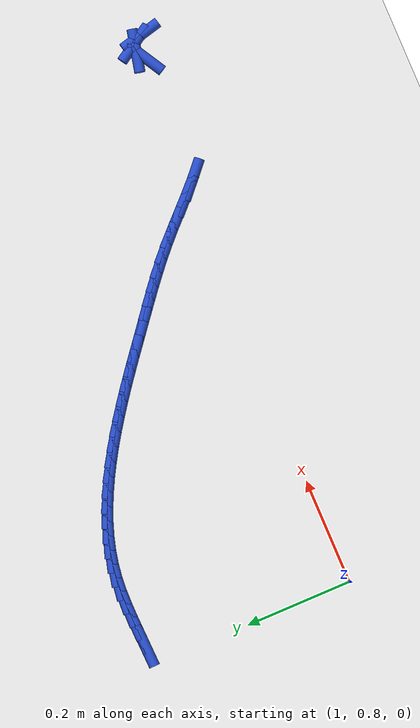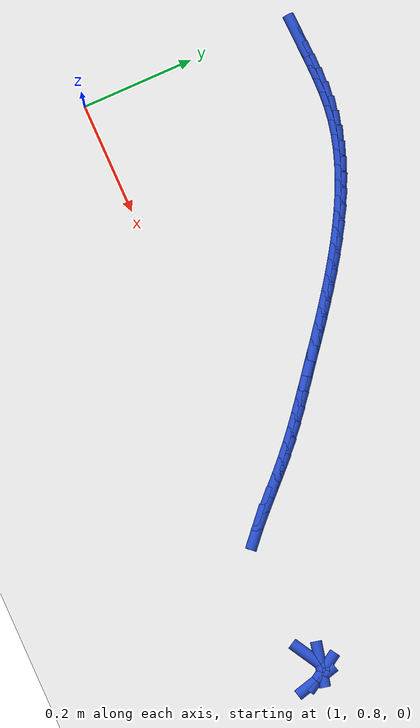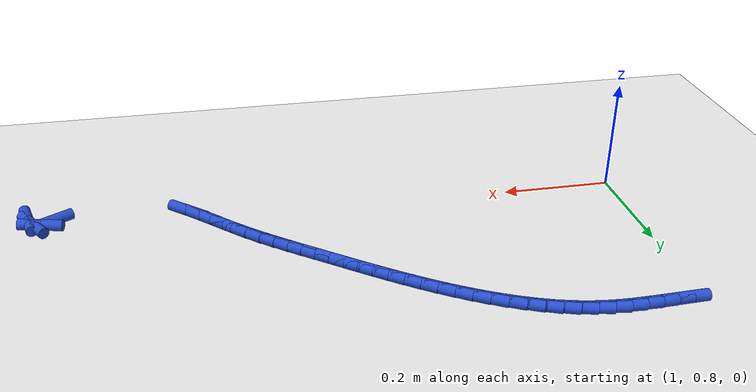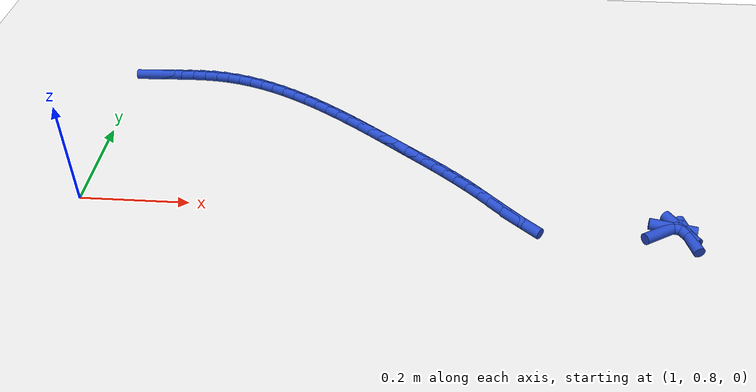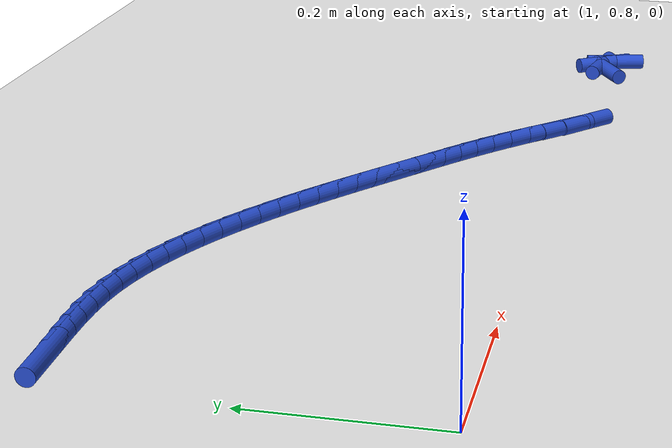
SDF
<sdf version="1.6">
 <world name="default">
  <model name="ground_plane">
   <static>1</static>
   <link name="link">
    <collision name="collision">
     <geometry><plane><normal>0 0 1</normal><size>100 100</size></plane></geometry>
     <surface><friction><ode><mu>100</mu><mu2>50</mu2></ode></friction></surface>
    </collision>
    <visual name="visual">
     <cast_shadows>0</cast_shadows>
     <geometry><plane><normal>0 0 1</normal><size>100 100</size></plane></geometry>
     <material>
      <script><uri>file://media/materials/scripts/gazebo.material</uri><name>Gazebo/WhiteGlow</name></script>
     </material>
    </visual>
   </link>
  </model>
  <model name="line">
   <link name="link_67">
    <pose>1.0381441361978527 1.1863007756691304 0.01 0 1.57 0.0333439631039731</pose>
    <collision name="collision">
     <geometry><cylinder><radius>0.01</radius><length>0.08</length></cylinder></geometry>
    </collision>
    <visual name="visual">
     <material>
      <script><name>Gazebo/Blue</name><uri>file://media/materials/scripts/gazebo.material</uri></script>
     </material>
     <geometry><cylinder><radius>0.01</radius><length>0.08</length></cylinder></geometry>
    </visual>
   </link>
   <link name="link_68">
    <pose>1.0652624599478735 1.1872053433193077 0.01 0 1.57 0.03232112575038664</pose>
    <collision name="collision">
     <geometry><cylinder><radius>0.01</radius><length>0.08</length></cylinder></geometry>
    </collision>
    <visual name="visual">
     <material>
      <script><name>Gazebo/Blue</name><uri>file://media/materials/scripts/gazebo.material</uri></script>
     </material>
     <geometry><cylinder><radius>0.01</radius><length>0.08</length></cylinder></geometry>
    </visual>
   </link>
   <link name="link_69">
    <pose>1.0919559448980485 1.188068407358801 0.01 0 1.57 0.014881690648698268</pose>
    <collision name="collision">
     <geometry><cylinder><radius>0.01</radius><length>0.08</length></cylinder></geometry>
    </collision>
    <visual name="visual">
     <material>
      <script><name>Gazebo/Blue</name><uri>file://media/materials/scripts/gazebo.material</uri></script>
     </material>
     <geometry><cylinder><radius>0.01</radius><length>0.08</length></cylinder></geometry>
    </visual>
   </link>
   <link name="link_70">
    <pose>1.1182866486339924 1.1884602816755672 0.01 0 1.57 -0.019551941805255272</pose>
    <collision name="collision">
     <geometry><cylinder><radius>0.01</radius><length>0.08</length></cylinder></geometry>
    </collision>
    <visual name="visual">
     <material>
      <script><name>Gazebo/Blue</name><uri>file://media/materials/scripts/gazebo.material</uri></script>
     </material>
     <geometry><cylinder><radius>0.01</radius><length>0.08</length></cylinder></geometry>
    </visual>
   </link>
   <link name="link_71">
    <pose>1.1443166287413213 1.1879512801575636 0.01 0 1.57 -0.07120434077144835</pose>
    <collision name="collision">
     <geometry><cylinder><radius>0.01</radius><length>0.08</length></cylinder></geometry>
    </collision>
    <visual name="visual">
     <material>
      <script><name>Gazebo/Blue</name><uri>file://media/materials/scripts/gazebo.material</uri></script>
     </material>
     <geometry><cylinder><radius>0.01</radius><length>0.08</length></cylinder></geometry>
    </visual>
   </link>
   <link name="link_72">
    <pose>1.1701079428056502 1.1861117166927473 0.01 0 1.57 -0.13897435776798897</pose>
    <collision name="collision">
     <geometry><cylinder><radius>0.01</radius><length>0.08</length></cylinder></geometry>
    </collision>
    <visual name="visual">
     <material>
      <script><name>Gazebo/Blue</name><uri>file://media/materials/scripts/gazebo.material</uri></script>
     </material>
     <geometry><cylinder><radius>0.01</radius><length>0.08</length></cylinder></geometry>
    </visual>
   </link>
   <link name="link_73">
    <pose>1.1957202697943599 1.182529165937361 0.01 0 1.57 -0.21064683466283354</pose>
    <collision name="collision">
     <geometry><cylinder><radius>0.01</radius><length>0.08</length></cylinder></geometry>
    </collision>
    <visual name="visual">
     <material>
      <script><name>Gazebo/Blue</name><uri>file://media/materials/scripts/gazebo.material</uri></script>
     </material>
     <geometry><cylinder><radius>0.01</radius><length>0.08</length></cylinder></geometry>
    </visual>
   </link>
   <link name="link_74">
    <pose>1.221172526899955 1.1770869959376105 0.01 0 1.57 -0.27639310832509073</pose>
    <collision name="collision">
     <geometry><cylinder><radius>0.01</radius><length>0.08</length></cylinder></geometry>
    </collision>
    <visual name="visual">
     <material>
      <script><name>Gazebo/Blue</name><uri>file://media/materials/scripts/gazebo.material</uri></script>
     </material>
     <geometry><cylinder><radius>0.01</radius><length>0.08</length></cylinder></geometry>
    </visual>
   </link>
   <link name="link_75">
    <pose>1.2464493784059067 1.1699171356551743 0.01 0 1.57 -0.33589795598405275</pose>
    <collision name="collision">
     <geometry><cylinder><radius>0.01</radius><length>0.08</length></cylinder></geometry>
    </collision>
    <visual name="visual">
     <material>
      <script><name>Gazebo/Blue</name><uri>file://media/materials/scripts/gazebo.material</uri></script>
     </material>
     <geometry><cylinder><radius>0.01</radius><length>0.08</length></cylinder></geometry>
    </visual>
   </link>
   <link name="link_76">
    <pose>1.2715344241142106 1.161159238607028 0.01 0 1.57 -0.38933039295243377</pose>
    <collision name="collision">
     <geometry><cylinder><radius>0.01</radius><length>0.08</length></cylinder></geometry>
    </collision>
    <visual name="visual">
     <material>
      <script><name>Gazebo/Blue</name><uri>file://media/materials/scripts/gazebo.material</uri></script>
     </material>
     <geometry><cylinder><radius>0.01</radius><length>0.08</length></cylinder></geometry>
    </visual>
   </link>
   <link name="link_77">
    <pose>1.2964112638268621 1.1509529583101479 0.01 0 1.57 -0.4369813335193183</pose>
    <collision name="collision">
     <geometry><cylinder><radius>0.01</radius><length>0.08</length></cylinder></geometry>
    </collision>
    <visual name="visual">
     <material>
      <script><name>Gazebo/Blue</name><uri>file://media/materials/scripts/gazebo.material</uri></script>
     </material>
     <geometry><cylinder><radius>0.01</radius><length>0.08</length></cylinder></geometry>
    </visual>
   </link>
   <link name="link_78">
    <pose>1.3210634973458575 1.1394379482815098 0.01 0 1.57 -0.47920478631398655</pose>
    <collision name="collision">
     <geometry><cylinder><radius>0.01</radius><length>0.08</length></cylinder></geometry>
    </collision>
    <visual name="visual">
     <material>
      <script><name>Gazebo/Blue</name><uri>file://media/materials/scripts/gazebo.material</uri></script>
     </material>
     <geometry><cylinder><radius>0.01</radius><length>0.08</length></cylinder></geometry>
    </visual>
   </link>
   <link name="link_79">
    <pose>1.3454747244731917 1.1267538620380897 0.01 0 1.57 -0.5163741952917786</pose>
    <collision name="collision">
     <geometry><cylinder><radius>0.01</radius><length>0.08</length></cylinder></geometry>
    </collision>
    <visual name="visual">
     <material>
      <script><name>Gazebo/Blue</name><uri>file://media/materials/scripts/gazebo.material</uri></script>
     </material>
     <geometry><cylinder><radius>0.01</radius><length>0.08</length></cylinder></geometry>
    </visual>
   </link>
   <link name="link_80">
    <pose>1.369628545010861 1.1130403530968644 0.01 0 1.57 -0.548852301888598</pose>
    <collision name="collision">
     <geometry><cylinder><radius>0.01</radius><length>0.08</length></cylinder></geometry>
    </collision>
    <visual name="visual">
     <material>
      <script><name>Gazebo/Blue</name><uri>file://media/materials/scripts/gazebo.material</uri></script>
     </material>
     <geometry><cylinder><radius>0.01</radius><length>0.08</length></cylinder></geometry>
    </visual>
   </link>
   <link name="link_81">
    <pose>1.39350855876086 1.0984370749748091 0.01 0 1.57 -0.576971576781629</pose>
    <collision name="collision">
     <geometry><cylinder><radius>0.01</radius><length>0.08</length></cylinder></geometry>
    </collision>
    <visual name="visual">
     <material>
      <script><name>Gazebo/Blue</name><uri>file://media/materials/scripts/gazebo.material</uri></script>
     </material>
     <geometry><cylinder><radius>0.01</radius><length>0.08</length></cylinder></geometry>
    </visual>
   </link>
   <link name="link_82">
    <pose>1.4170983655251859 1.0830836811889002 0.01 0 1.57 -0.6010221434878797</pose>
    <collision name="collision">
     <geometry><cylinder><radius>0.01</radius><length>0.08</length></cylinder></geometry>
    </collision>
    <visual name="visual">
     <material>
      <script><name>Gazebo/Blue</name><uri>file://media/materials/scripts/gazebo.material</uri></script>
     </material>
     <geometry><cylinder><radius>0.01</radius><length>0.08</length></cylinder></geometry>
    </visual>
   </link>
   <link name="link_83">
    <pose>1.440381565105833 1.0671198252561136 0.01 0 1.57 -0.6212445299086801</pose>
    <collision name="collision">
     <geometry><cylinder><radius>0.01</radius><length>0.08</length></cylinder></geometry>
    </collision>
    <visual name="visual">
     <material>
      <script><name>Gazebo/Blue</name><uri>file://media/materials/scripts/gazebo.material</uri></script>
     </material>
     <geometry><cylinder><radius>0.01</radius><length>0.08</length></cylinder></geometry>
    </visual>
   </link>
   <link name="link_84">
    <pose>1.4633417573047978 1.050685160693426 0.01 0 1.57 -0.6378251378970421</pose>
    <collision name="collision">
     <geometry><cylinder><radius>0.01</radius><length>0.08</length></cylinder></geometry>
    </collision>
    <visual name="visual">
     <material>
      <script><name>Gazebo/Blue</name><uri>file://media/materials/scripts/gazebo.material</uri></script>
     </material>
     <geometry><cylinder><radius>0.01</radius><length>0.08</length></cylinder></geometry>
    </visual>
   </link>
   <link name="link_85">
    <pose>1.485962541924075 1.0339193410178131 0.01 0 1.57 -0.6508928181626911</pose>
    <collision name="collision">
     <geometry><cylinder><radius>0.01</radius><length>0.08</length></cylinder></geometry>
    </collision>
    <visual name="visual">
     <material>
      <script><name>Gazebo/Blue</name><uri>file://media/materials/scripts/gazebo.material</uri></script>
     </material>
     <geometry><cylinder><radius>0.01</radius><length>0.08</length></cylinder></geometry>
    </visual>
   </link>
   <link name="link_86">
    <pose>1.508227518765661 1.0169620197462503 0.01 0 1.57 -0.6605153031017855</pose>
    <collision name="collision">
     <geometry><cylinder><radius>0.01</radius><length>0.08</length></cylinder></geometry>
    </collision>
    <visual name="visual">
     <material>
      <script><name>Gazebo/Blue</name><uri>file://media/materials/scripts/gazebo.material</uri></script>
     </material>
     <geometry><cylinder><radius>0.01</radius><length>0.08</length></cylinder></geometry>
    </visual>
   </link>
   <link name="link_87">
    <pose>1.530120287631552 0.9999528503957147 0.01 0 1.57 -0.6666944672492753</pose>
    <collision name="collision">
     <geometry><cylinder><radius>0.01</radius><length>0.08</length></cylinder></geometry>
    </collision>
    <visual name="visual">
     <material>
      <script><name>Gazebo/Blue</name><uri>file://media/materials/scripts/gazebo.material</uri></script>
     </material>
     <geometry><cylinder><radius>0.01</radius><length>0.08</length></cylinder></geometry>
    </visual>
   </link>
   <link name="link_88">
    <pose>1.5516244483237425 0.9830314864831817 0.01 0 1.57 -0.6693594590260595</pose>
    <collision name="collision">
     <geometry><cylinder><radius>0.01</radius><length>0.08</length></cylinder></geometry>
    </collision>
    <visual name="visual">
     <material>
      <script><name>Gazebo/Blue</name><uri>file://media/materials/scripts/gazebo.material</uri></script>
     </material>
     <geometry><cylinder><radius>0.01</radius><length>0.08</length></cylinder></geometry>
    </visual>
   </link>
   <link name="link_89">
    <pose>1.5727236006442287 0.9663375815256274 0.01 0 1.57 -0.668693983475017</pose>
    <collision name="collision">
     <geometry><cylinder><radius>0.01</radius><length>0.08</length></cylinder></geometry>
    </collision>
    <visual name="visual">
     <material>
      <script><name>Gazebo/Blue</name><uri>file://media/materials/scripts/gazebo.material</uri></script>
     </material>
     <geometry><cylinder><radius>0.01</radius><length>0.08</length></cylinder></geometry>
    </visual>
   </link>
   <link name="link_90">
    <pose>1.5934078343590572 0.9499943352985748 0.01 0 1.57 -0.6700878174838375</pose>
    <collision name="collision">
     <geometry><cylinder><radius>0.01</radius><length>0.08</length></cylinder></geometry>
    </collision>
    <visual name="visual">
     <material>
      <script><name>Gazebo/Blue</name><uri>file://media/materials/scripts/gazebo.material</uri></script>
     </material>
     <geometry><cylinder><radius>0.01</radius><length>0.08</length></cylinder></geometry>
    </visual>
   </link>
   <link name="link_91">
    <pose>1.6137728737517774 0.9338571366889464 0.01 0 1.57 -0.6780956194503492</pose>
    <collision name="collision">
     <geometry><cylinder><radius>0.01</radius><length>0.08</length></cylinder></geometry>
    </collision>
    <visual name="visual">
     <material>
      <script><name>Gazebo/Blue</name><uri>file://media/materials/scripts/gazebo.material</uri></script>
     </material>
     <geometry><cylinder><radius>0.01</radius><length>0.08</length></cylinder></geometry>
    </visual>
   </link>
   <link name="link_92">
    <pose>1.6340003543014987 0.9175635674296369 0.01 0 1.57 -0.6925112424646565</pose>
    <collision name="collision">
     <geometry><cylinder><radius>0.01</radius><length>0.08</length></cylinder></geometry>
    </collision>
    <visual name="visual">
     <material>
      <script><name>Gazebo/Blue</name><uri>file://media/materials/scripts/gazebo.material</uri></script>
     </material>
     <geometry><cylinder><radius>0.01</radius><length>0.08</length></cylinder></geometry>
    </visual>
   </link>
   <link name="link_93">
    <pose>1.6542744038946011 0.9007448903549394 0.01 0 1.57 -0.712465897620827</pose>
    <collision name="collision">
     <geometry><cylinder><radius>0.01</radius><length>0.08</length></cylinder></geometry>
    </collision>
    <visual name="visual">
     <material>
      <script><name>Gazebo/Blue</name><uri>file://media/materials/scripts/gazebo.material</uri></script>
     </material>
     <geometry><cylinder><radius>0.01</radius><length>0.08</length></cylinder></geometry>
    </visual>
   </link>
   <link name="link_94">
    <pose>1.6747791504174612 0.8830323682991474 0.01 0 1.57 -0.7366966875915588</pose>
    <collision name="collision">
     <geometry><cylinder><radius>0.01</radius><length>0.08</length></cylinder></geometry>
    </collision>
    <visual name="visual">
     <material>
      <script><name>Gazebo/Blue</name><uri>file://media/materials/scripts/gazebo.material</uri></script>
     </material>
     <geometry><cylinder><radius>0.01</radius><length>0.08</length></cylinder></geometry>
    </visual>
   </link>
   <link name="link_95">
    <pose>1.695698721756457 0.8640572640965537 0.01 0 1.57 -0.7637209570904834</pose>
    <collision name="collision">
     <geometry><cylinder><radius>0.01</radius><length>0.08</length></cylinder></geometry>
    </collision>
    <visual name="visual">
     <material>
      <script><name>Gazebo/Blue</name><uri>file://media/materials/scripts/gazebo.material</uri></script>
     </material>
     <geometry><cylinder><radius>0.01</radius><length>0.08</length></cylinder></geometry>
    </visual>
   </link>
   <link name="link_96">
    <pose>1.717216958361582 0.8434522841972198 0.01 0 1.57 -0.7853233571222408</pose>
    <collision name="collision">
     <geometry><cylinder><radius>0.01</radius><length>0.08</length></cylinder></geometry>
    </collision>
    <visual name="visual">
     <material>
      <script><name>Gazebo/Blue</name><uri>file://media/materials/scripts/gazebo.material</uri></script>
     </material>
     <geometry><cylinder><radius>0.01</radius><length>0.08</length></cylinder></geometry>
    </visual>
   </link>
   <link name="link_97">
    <pose>1.7394419416932494 0.8212306257532753 0.01 0 1.57 -0.7870033747579048</pose>
    <collision name="collision">
     <geometry><cylinder><radius>0.01</radius><length>0.08</length></cylinder></geometry>
    </collision>
    <visual name="visual">
     <material>
      <script><name>Gazebo/Blue</name><uri>file://media/materials/scripts/gazebo.material</uri></script>
     </material>
     <geometry><cylinder><radius>0.01</radius><length>0.08</length></cylinder></geometry>
    </visual>
   </link>
   <link name="link_98">
    <pose>1.7623047907648972 0.7982942591972577 0.01 0 1.57 -0.7683629367848982</pose>
    <collision name="collision">
     <geometry><cylinder><radius>0.01</radius><length>0.08</length></cylinder></geometry>
    </collision>
    <visual name="visual">
     <material>
      <script><name>Gazebo/Blue</name><uri>file://media/materials/scripts/gazebo.material</uri></script>
     </material>
     <geometry><cylinder><radius>0.01</radius><length>0.08</length></cylinder></geometry>
    </visual>
   </link>
   <link name="link_99">
    <pose>1.7857114004410444 0.775671840311991 0.01 0 1.57 -0.7283782177794924</pose>
    <collision name="collision">
     <geometry><cylinder><radius>0.01</radius><length>0.08</length></cylinder></geometry>
    </collision>
    <visual name="visual">
     <material>
      <script><name>Gazebo/Blue</name><uri>file://media/materials/scripts/gazebo.material</uri></script>
     </material>
     <geometry><cylinder><radius>0.01</radius><length>0.08</length></cylinder></geometry>
    </visual>
   </link>
   <link name="link_109">
    <pose>2.025373474629726 0.7680303153222131 0.01 0 1.57 0.522256712605907</pose>
    <collision name="collision">
     <geometry><cylinder><radius>0.01</radius><length>0.08</length></cylinder></geometry>
    </collision>
    <visual name="visual">
     <material>
      <script><name>Gazebo/Blue</name><uri>file://media/materials/scripts/gazebo.material</uri></script>
     </material>
     <geometry><cylinder><radius>0.01</radius><length>0.08</length></cylinder></geometry>
    </visual>
   </link>
   <link name="link_110">
    <pose>2.0429792491402985 0.7781635342701352 0.01 0 1.57 -0.2219626436372154</pose>
    <collision name="collision">
     <geometry><cylinder><radius>0.01</radius><length>0.08</length></cylinder></geometry>
    </collision>
    <visual name="visual">
     <material>
      <script><name>Gazebo/Blue</name><uri>file://media/materials/scripts/gazebo.material</uri></script>
     </material>
     <geometry><cylinder><radius>0.01</radius><length>0.08</length></cylinder></geometry>
    </visual>
   </link>
   <link name="link_111">
    <pose>2.0563542437590283 0.7751450505592546 0.01 0 1.57 -1.0110548958066086</pose>
    <collision name="collision">
     <geometry><cylinder><radius>0.01</radius><length>0.08</length></cylinder></geometry>
    </collision>
    <visual name="visual">
     <material>
      <script><name>Gazebo/Blue</name><uri>file://media/materials/scripts/gazebo.material</uri></script>
     </material>
     <geometry><cylinder><radius>0.01</radius><length>0.08</length></cylinder></geometry>
    </visual>
   </link>
   <link name="link_112">
    <pose>2.0658118361845856 0.7600512864778755 0.01 0 1.57 -1.3265809898621121</pose>
    <collision name="collision">
     <geometry><cylinder><radius>0.01</radius><length>0.08</length></cylinder></geometry>
    </collision>
    <visual name="visual">
     <material>
      <script><name>Gazebo/Blue</name><uri>file://media/materials/scripts/gazebo.material</uri></script>
     </material>
     <geometry><cylinder><radius>0.01</radius><length>0.08</length></cylinder></geometry>
    </visual>
   </link>
  </model>
 </world>
</sdf>
